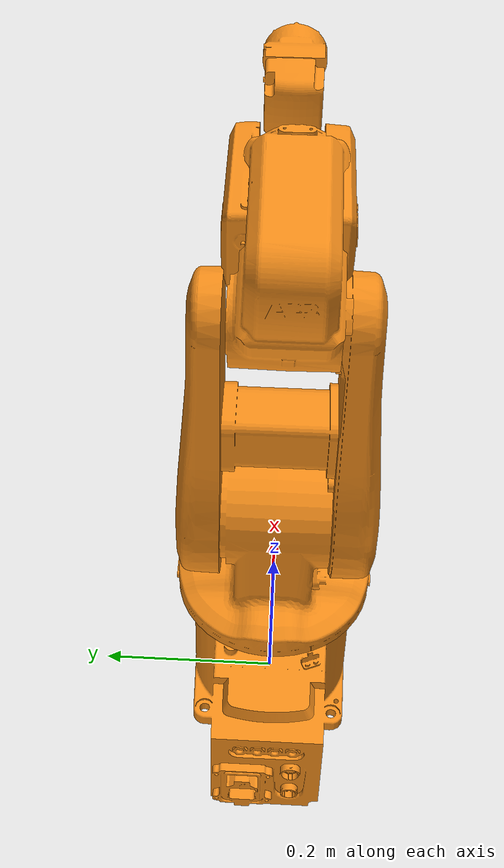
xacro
<?xml version="1.0" ?>

<robot name="abb_irb120" xmlns:xacro="http://ros.org/wiki/xacro">
  <xacro:include filename="$(find abb_irb120_gazebo)/urdf/irb120_macro.xacro"/>
  <xacro:abb_irb120_g prefix=""/>

  <!-- Fix robot to Gazebo world -->
  <link name="world"/>
  <joint name="world-base_link-fixed" type="fixed">
    <parent link="world"/>
    <child link="base_link"/>
  </joint>
</robot>

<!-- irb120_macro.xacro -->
<robot xmlns:xacro="http://ros.org/wiki/xacro">
<xacro:include filename="$(find abb_irb120_support)/urdf/irb120_macro.xacro"/>
<xacro:macro name="abb_irb120_g" params="prefix">

  <!-- get base ABB IRB120 model -->
  <xacro:abb_irb120 prefix="${prefix}" />

  <!-- transmission list -->
  <transmission name="${prefix}tran1">
    <type>transmission_interface/SimpleTransmission</type>
    <joint name="${prefix}joint_1">
      <hardwareInterface>PositionJointInterface</hardwareInterface>
    </joint>
    <actuator name="${prefix}motor1">
      <mechanicalReduction>1</mechanicalReduction>
    </actuator>
  </transmission>
  <transmission name="${prefix}tran2">
    <type>transmission_interface/SimpleTransmission</type>
    <joint name="${prefix}joint_2">
      <hardwareInterface>PositionJointInterface</hardwareInterface>
    </joint>
    <actuator name="${prefix}motor2">
      <mechanicalReduction>1</mechanicalReduction>
    </actuator>
  </transmission>
  <transmission name="${prefix}tran3">
    <type>transmission_interface/SimpleTransmission</type>
    <joint name="${prefix}joint_3">
      <hardwareInterface>PositionJointInterface</hardwareInterface>
    </joint>
    <actuator name="${prefix}motor3">
      <mechanicalReduction>1</mechanicalReduction>
    </actuator>
  </transmission>
  <transmission name="${prefix}tran4">
    <type>transmission_interface/SimpleTransmission</type>
    <joint name="${prefix}joint_4">
      <hardwareInterface>PositionJointInterface</hardwareInterface>
    </joint>
    <actuator name="${prefix}motor4">
      <mechanicalReduction>1</mechanicalReduction>
    </actuator>
  </transmission>
  <transmission name="${prefix}tran5">
    <type>transmission_interface/SimpleTransmission</type>
    <joint name="${prefix}joint_5">
      <hardwareInterface>PositionJointInterface</hardwareInterface>
    </joint>
    <actuator name="${prefix}motor5">
      <mechanicalReduction>1</mechanicalReduction>
    </actuator>
  </transmission>
  <transmission name="${prefix}tran6">
    <type>transmission_interface/SimpleTransmission</type>
    <joint name="${prefix}joint_6">
      <hardwareInterface>PositionJointInterface</hardwareInterface>
    </joint>
    <actuator name="${prefix}motor6">
      <mechanicalReduction>1</mechanicalReduction>
    </actuator>
  </transmission>
  <!-- end of transmission list -->

  <!-- Gazebo-specific link properties -->
  <gazebo reference="${prefix}base_link">
    <material>Gazebo/Orange</material>
    <turnGravityOff>true</turnGravityOff>
  </gazebo>
  <gazebo reference="${prefix}link_1">
    <material>Gazebo/Orange</material>
    <turnGravityOff>true</turnGravityOff>
  </gazebo>
  <gazebo reference="${prefix}link_2">
    <material>Gazebo/Orange</material>
    <turnGravityOff>true</turnGravityOff>
  </gazebo>
  <gazebo reference="${prefix}link_3">
    <material>Gazebo/Orange</material>
    <turnGravityOff>true</turnGravityOff>
  </gazebo>
  <gazebo reference="${prefix}link_4">
    <material>Gazebo/Orange</material>
    <turnGravityOff>true</turnGravityOff>
  </gazebo>
  <gazebo reference="${prefix}link_5">
    <material>Gazebo/Orange</material>
    <turnGravityOff>true</turnGravityOff>
  </gazebo>
  <gazebo reference="${prefix}link_6">
    <material>Gazebo/Black</material>
    <turnGravityOff>true</turnGravityOff>
  </gazebo>

  <!-- ros_control plugin -->
  <gazebo>
    <plugin name="gazebo_ros_control" filename="libgazebo_ros_control.so">
      <robotNamespace>/</robotNamespace>
      <robotSimType>gazebo_ros_control/DefaultRobotHWSim</robotSimType>
    </plugin>
  </gazebo>

  </xacro:macro>
</robot>

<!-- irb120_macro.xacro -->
<robot xmlns:xacro="http://ros.org/wiki/xacro">
  <xacro:include filename="$(find abb_resources)/urdf/common_materials.xacro"/>

  <xacro:macro name="abb_irb120" params="prefix">
    <!-- link list -->
    <link name="${prefix}base_link">
      <inertial>
        <mass value="6.215"/>
        <origin xyz="-0.04204 8.01E-05 0.07964" rpy="0 0 0"/>
        <inertia ixx="0.0247272" ixy="-8.0784E-05" ixz="0.00130902" iyy="0.0491285" iyz="-8.0419E-06" izz="0.0472376"/>
      </inertial>
      <visual>
        <origin xyz="0 0 0" rpy="0 0 0"/>
        <geometry>
          <mesh filename="package://abb_irb120_support/meshes/irb120/visual/base_link.stl"/>
        </geometry>
        <xacro:material_abb_orange />
      </visual>
      <collision>
        <origin xyz="0 0 0" rpy="0 0 0"/>
        <geometry>
          <mesh filename="package://abb_irb120_support/meshes/irb120/collision/base_link.stl"/>
        </geometry>
        <xacro:material_abb_yellow />
      </collision>
    </link>
    <link name="${prefix}link_1">
      <inertial>
        <mass value="3.067" />
        <origin xyz="9.77E-05 -0.00012 0.23841" rpy="0 0 0"/>
        <inertia ixx="0.0142175" ixy="-1.28579E-05" ixz="-2.31364E-05" iyy="0.0144041" iyz="1.93404E-05" izz="0.0104533"/>
      </inertial>
      <visual>
        <origin xyz="0 0 0" rpy="0 0 0"/>
        <geometry>
          <mesh filename="package://abb_irb120_support/meshes/irb120/visual/link_1.stl"/>
        </geometry>
        <xacro:material_abb_orange />
      </visual>
      <collision>
        <origin xyz="0 0 0" rpy="0 0 0"/>
        <geometry>
          <mesh filename="package://abb_irb120_support/meshes/irb120/collision/link_1.stl"/>
        </geometry>
        <xacro:material_abb_yellow />
      </collision>
    </link>
    <link name="${prefix}link_2">
      <inertial>
        <mass value="3.909"/>
        <origin xyz="0.00078 -0.00212 0.10124" rpy="0 0 0"/>
        <inertia ixx="0.0603111" ixy="9.83431E-06" ixz="5.72407E-05" iyy="0.041569" iyz="-0.00050497" izz="0.0259548"/>
      </inertial>
      <visual>
        <origin xyz="0 0 0" rpy="0 0 0"/>
        <geometry>
          <mesh filename="package://abb_irb120_support/meshes/irb120/visual/link_2.stl"/>
        </geometry>
        <xacro:material_abb_orange />
      </visual>
      <collision>
        <origin xyz="0 0 0" rpy="0 0 0"/>
        <geometry>
          <mesh filename="package://abb_irb120_support/meshes/irb120/collision/link_2.stl"/>
        </geometry>
        <xacro:material_abb_yellow />
      </collision>
    </link>
    <link name="${prefix}link_3">
      <inertial>
        <mass value="2.944"/>
        <origin xyz="0.02281 0.00106 0.05791" rpy="0 0 0"/>
        <inertia ixx="0.00835606" ixy="-8.01545E-05" ixz="0.00142884" iyy="0.016713" iyz="-0.000182227" izz="0.0126984"/>
      </inertial>
      <visual>
        <origin xyz="0 0 0" rpy="0 0 0"/>
        <geometry>
          <mesh filename="package://abb_irb120_support/meshes/irb120/visual/link_3.stl"/>
        </geometry>
        <xacro:material_abb_orange />
      </visual>
      <collision>
        <origin xyz="0 0 0" rpy="0 0 0"/>
        <geometry>
          <mesh filename="package://abb_irb120_support/meshes/irb120/collision/link_3.stl"/>
        </geometry>
        <xacro:material_abb_yellow />
      </collision>
    </link>
    <link name="${prefix}link_4">
      <inertial>
        <mass value="1.328"/>
        <origin xyz="0.2247 0.00015 0.00041" rpy="0 0 0"/>
        <inertia ixx="0.00284661" ixy="-2.12765E-05" ixz="-1.6435E-05" iyy="0.00401346" iyz="1.31336E-05" izz="0.0052535"/>
      </inertial>
      <visual>
        <origin xyz="0 0 0" rpy="0 0 0"/>
        <geometry>
          <mesh filename="package://abb_irb120_support/meshes/irb120/visual/link_4.stl"/>
        </geometry>
        <xacro:material_abb_orange />
      </visual>
      <collision>
        <origin xyz="0 0 0" rpy="0 0 0"/>
        <geometry>
          <mesh filename="package://abb_irb120_support/meshes/irb120/collision/link_4.stl"/>
        </geometry>
        <xacro:material_abb_yellow />
      </collision>
    </link>
    <link name="${prefix}link_5">
      <inertial>
        <mass value="0.546"/>
        <origin xyz="-0.00109 3.68E-05 6.22E-05" rpy="0 0 0"/>
        <inertia ixx="0.000404891" ixy="1.61943E-06" ixz="8.46805E-07" iyy="0.000892825" iyz="-1.51792E-08" izz="0.000815468"/>
      </inertial>
      <visual>
        <origin xyz="0 0 0" rpy="0 0 0"/>
        <geometry>
          <mesh filename="package://abb_irb120_support/meshes/irb120/visual/link_5.stl"/>
        </geometry>
        <xacro:material_abb_orange />
      </visual>
      <collision>
        <origin xyz="0 0 0" rpy="0 0 0"/>
        <geometry>
          <mesh filename="package://abb_irb120_support/meshes/irb120/collision/link_5.stl"/>
        </geometry>
        <xacro:material_abb_yellow />
      </collision>
    </link>
    <link name="${prefix}link_6">
      <inertial>
        <mass value="0.137"/>
        <origin xyz="-0.00706 -0.00017 -1.32E-06" rpy="0 0 0"/>
        <inertia ixx="0.001" ixy="0" ixz="0" iyy="0.001" iyz="0" izz="0.001"/>
      </inertial>
      <visual>
        <origin xyz="0 0 0" rpy="0 0 0"/>
        <geometry>
          <mesh filename="package://abb_irb120_support/meshes/irb120/visual/link_6.stl"/>
        </geometry>
        <xacro:material_abb_black />
      </visual>
      <collision>
        <origin xyz="0 0 0" rpy="0 0 0"/>
        <geometry>
          <mesh filename="package://abb_irb120_support/meshes/irb120/collision/link_6.stl"/>
        </geometry>
        <xacro:material_abb_yellow />
      </collision>
    </link>
    <link name="${prefix}tool0"/>
    <!-- end of link list -->

    <!-- joint list -->
    <joint name="${prefix}joint_1" type="revolute">
      <origin rpy="0 0 0" xyz="0 0 0"/>
      <parent link="${prefix}base_link"/>
      <child link="${prefix}link_1"/>
      <limit effort="0" lower="-2.87979" upper="2.87979" velocity="4.36332"/>
      <axis xyz="0 0 1"/>
      <dynamics damping="0.0" friction="0.0"/>
    </joint>
    <joint name="${prefix}joint_2" type="revolute">
      <origin rpy="0 0 0" xyz="0 0 0.29"/>
      <parent link="${prefix}link_1"/>
      <child link="${prefix}link_2"/>
      <limit effort="0" lower="-1.91986" upper="1.91986" velocity="4.36332"/>
      <axis xyz="0 1 0"/>
      <dynamics damping="0.0" friction="0.0"/>
    </joint>
    <joint name="${prefix}joint_3" type="revolute">
      <origin rpy="0 0 0" xyz="0 0 0.27"/>
      <parent link="${prefix}link_2"/>
      <child link="${prefix}link_3"/>
      <limit effort="0" lower="-1.91986" upper="1.22173" velocity="4.36332"/>
      <axis xyz="0 1 0"/>
      <dynamics damping="0.0" friction="0.0"/>
    </joint>
    <joint name="${prefix}joint_4" type="revolute">
      <origin rpy="0 0 0" xyz="0 0 0.07"/>
      <parent link="${prefix}link_3"/>
      <child link="${prefix}link_4"/>
      <limit effort="0" lower="-2.79253" upper="2.79253" velocity="5.58505"/>
      <axis xyz="1 0 0"/>
      <dynamics damping="0.0" friction="0.0"/>
    </joint>
    <joint name="${prefix}joint_5" type="revolute">
      <origin rpy="0 0 0" xyz="0.302 0 0"/>
      <parent link="${prefix}link_4"/>
      <child link="${prefix}link_5"/>
      <limit effort="0" lower="-2.094395" upper="2.094395" velocity="5.58505"/>
      <axis xyz="0 1 0"/>
      <dynamics damping="0.0" friction="0.0"/>
    </joint>
    <joint name="${prefix}joint_6" type="revolute">
      <origin rpy="0 0 0" xyz="0.072 0 0"/>
      <parent link="${prefix}link_5"/>
      <child link="${prefix}link_6"/>
      <limit effort="0" lower="-6.98132" upper="6.98132" velocity="7.33038"/>
      <axis xyz="1 0 0"/>
      <dynamics damping="0.0" friction="0.0"/>
    </joint>
    <joint name="${prefix}joint6-tool0" type="fixed">
      <parent link="${prefix}link_6"/>
      <child link="${prefix}tool0"/>
      <origin rpy="0 0 0" xyz="0 0 0"/>
    </joint>
    <!-- end of joint list -->

    <!-- ROS base_link to ABB World Coordinates transform -->
    <link name="${prefix}base" />
    <joint name="${prefix}base_link-base" type="fixed">
      <origin xyz="0 0 0" rpy="0 0 0"/>
      <parent link="${prefix}base_link"/>
      <child link="${prefix}base"/>
    </joint>
  </xacro:macro>
</robot>
